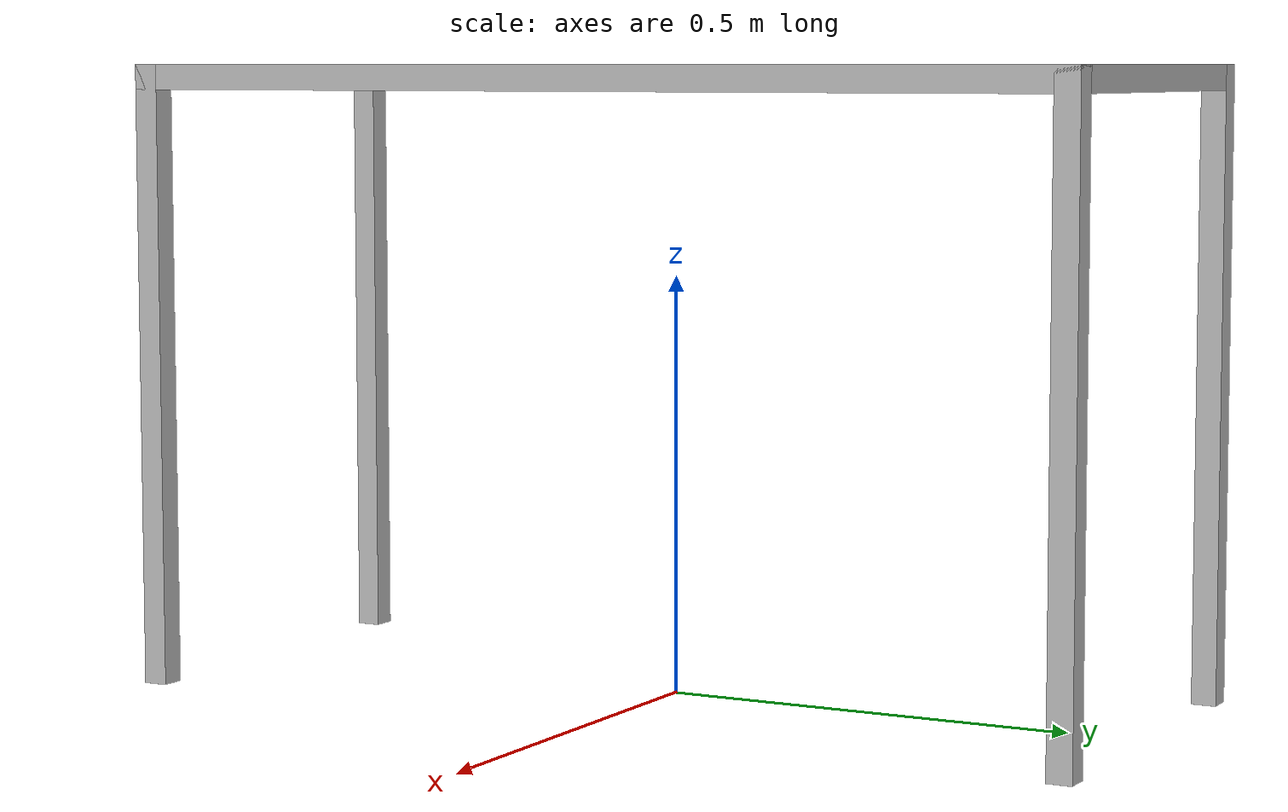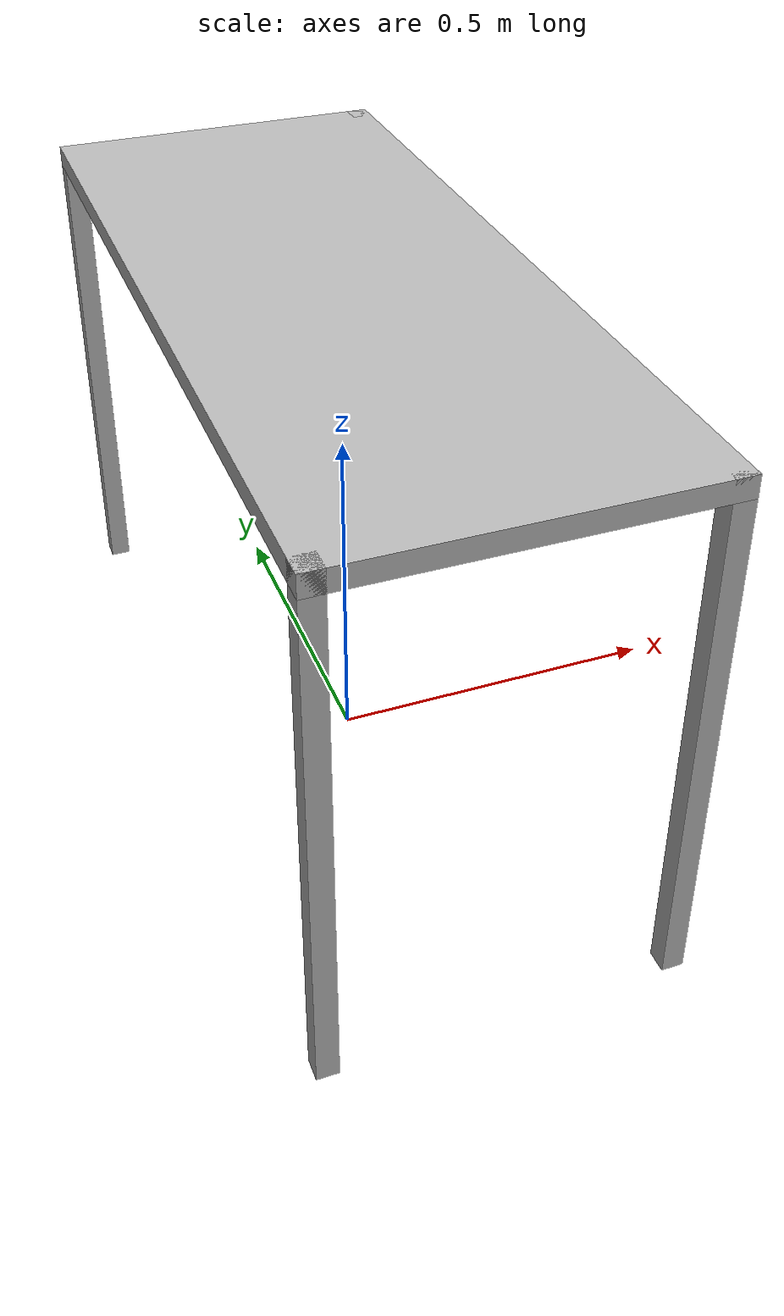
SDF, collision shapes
<sdf version='1.7'>
  <model name='table'>
    <static>true</static>
    <link name='base_link'>
      <inertial>
        <pose>0 0 0.735 0 -0 0</pose>
        <mass>50</mass>
        <inertia>
          <ixx>12.5</ixx>
          <ixy>0</ixy>
          <ixz>0</ixz>
          <iyy>12.5</iyy>
          <iyz>0</iyz>
          <izz>4.0</izz>
        </inertia>
      </inertial>
      <collision name='base_link_fixed_joint_lump__body_link_collision'>
        <pose>0 0 0.735 0 -0 0</pose>
        <geometry>
          <box>
            <size>0.5 1.2 0.03</size>
          </box>
        </geometry>
      </collision>
      <collision name='base_link_fixed_joint_lump__bf_link_collision_1'>
        <pose>-0.235 -0.585 0.375 0 -0 0</pose>
        <geometry>
          <box>
            <size>0.03 0.03 0.75</size>
          </box>
        </geometry>
      </collision>
      <collision name='base_link_fixed_joint_lump__br_link_collision_2'>
        <pose>-0.235 0.585 0.375 0 -0 0</pose>
        <geometry>
          <box>
            <size>0.03 0.03 0.75</size>
          </box>
        </geometry>
      </collision>
      <collision name='base_link_fixed_joint_lump__lf_link_collision_3'>
        <pose>0.235 -0.585 0.375 0 -0 0</pose>
        <geometry>
          <box>
            <size>0.03 0.03 0.75</size>
          </box>
        </geometry>
      </collision>
      <collision name='base_link_fixed_joint_lump__lr_link_collision_4'>
        <pose>0.235 0.585 0.375 0 -0 0</pose>
        <geometry>
          <box>
            <size>0.03 0.03 0.75</size>
          </box>
        </geometry>
      </collision>
      <visual name='base_link_visual'>
        <pose>0 0 0 0 -0 0</pose>
        <geometry>
          <box>
            <size>0.01 0.01 0.001</size>
          </box>
        </geometry>
      </visual>
      <visual name='base_link_fixed_joint_lump__body_link_visual_1'>
        <pose>-0.25 -0.6 -0.035 0 -0 0</pose>
        <geometry>
          <mesh>
            <scale>1 1 1</scale>
            <uri>model://table/table.dae</uri>
          </mesh>
        </geometry>
      </visual>
    </link>
    <frame name='base_to_body' attached_to='base_link'>
      <pose>0 0 0.735 0 -0 0</pose>
    </frame>
    <frame name='body_link' attached_to='base_to_body'/>
    <frame name='body_to_bf' attached_to='base_link'>
      <pose>0 0 0 0 -0 0</pose>
    </frame>
    <frame name='bf_link' attached_to='body_to_bf'/>
    <frame name='body_to_br' attached_to='base_link'>
      <pose>0 0 0 0 -0 0</pose>
    </frame>
    <frame name='br_link' attached_to='body_to_br'/>
    <frame name='body_to_lf' attached_to='base_link'>
      <pose>0 0 0 0 -0 0</pose>
    </frame>
    <frame name='lf_link' attached_to='body_to_lf'/>
    <frame name='body_to_lr' attached_to='base_link'>
      <pose>0 0 0 0 -0 0</pose>
    </frame>
    <frame name='lr_link' attached_to='body_to_lr'/>
  </model>
</sdf>
